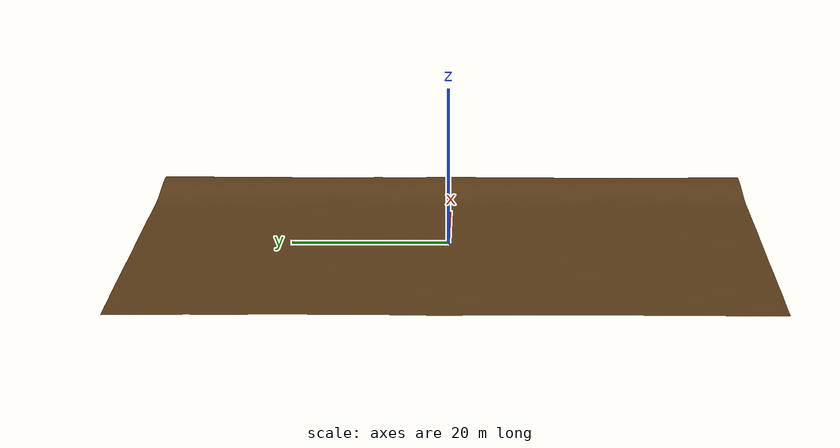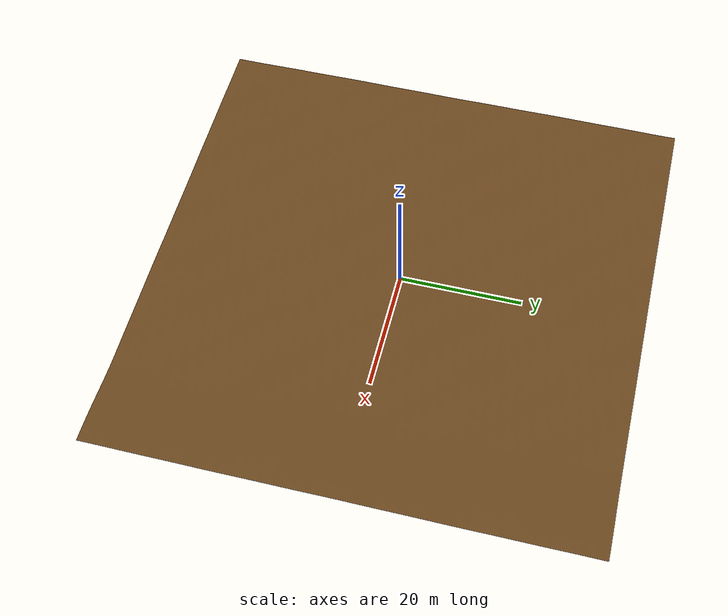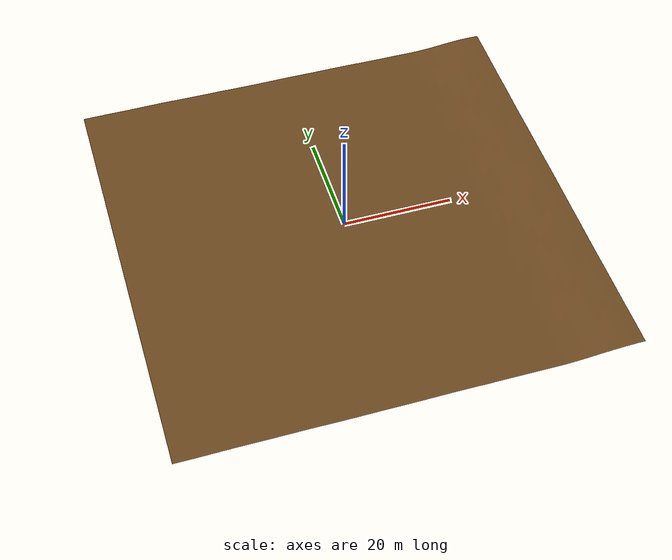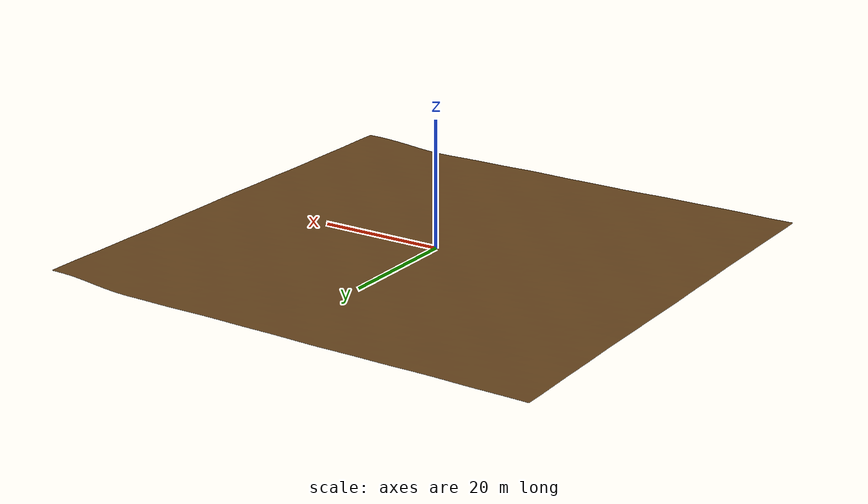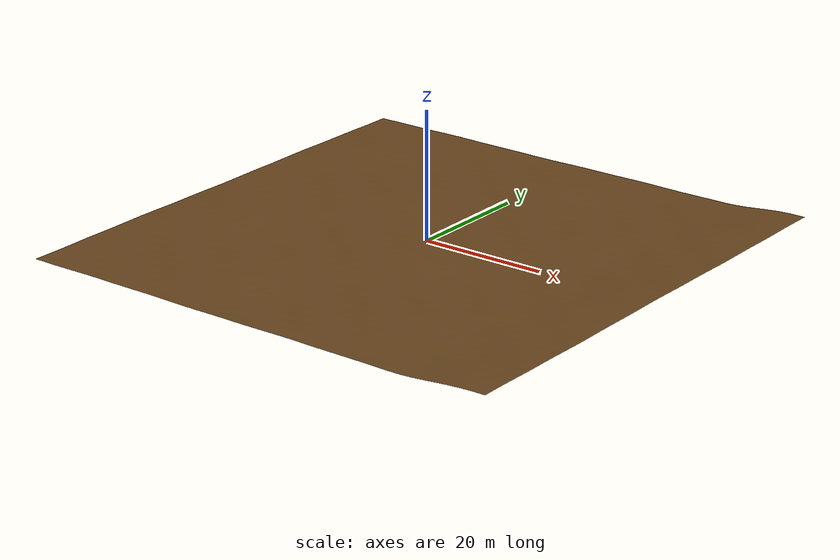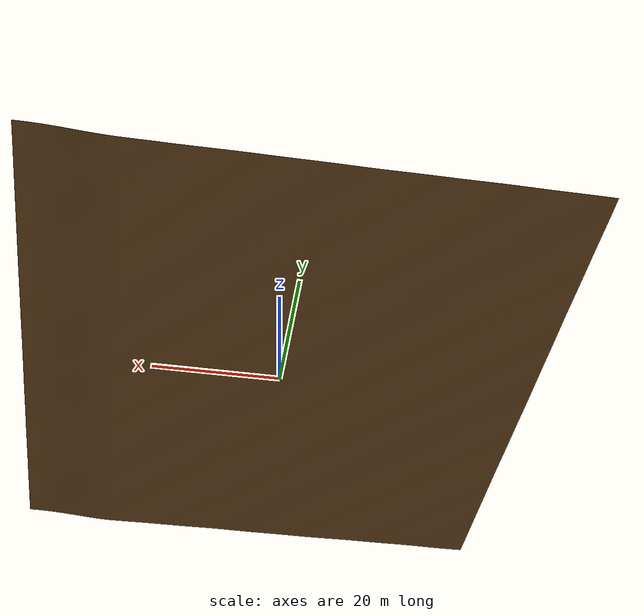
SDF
<?xml version="1.0" ?>
<sdf version="1.10">
  <model name="terrain">
    <static>true</static>
    <!-- Existing collision contract: fixed heightmap with a stronger whole-map shoreline incline. -->
    <link name="heightmap_link">
      <collision name="heightmap_collision">
        <geometry><heightmap><uri>heightmap.png</uri><size>80 80 1.35</size><pos>0 0 0</pos></heightmap></geometry>
      </collision>
    </link>
    <!-- Collision-free organic visual mesh; kept separate for safe iteration. -->
    <link name="terrain_visual_link">
      <visual name="organic_terrain_visual"><material><ambient>0.24 0.16 0.08 1</ambient><diffuse>0.42 0.28 0.12 1</diffuse><specular>0.02 0.02 0.01 1</specular><pbr><metal><albedo_map>model://terrain/materials/mudflat.png</albedo_map><roughness>0.92</roughness><metalness>0.0</metalness></metal></pbr></material>
        <geometry><mesh><uri>meshes/terrain_visual.obj</uri><scale>1.6 1.6 1.12</scale></mesh></geometry>
      </visual>
    </link>
  </model>
</sdf>
